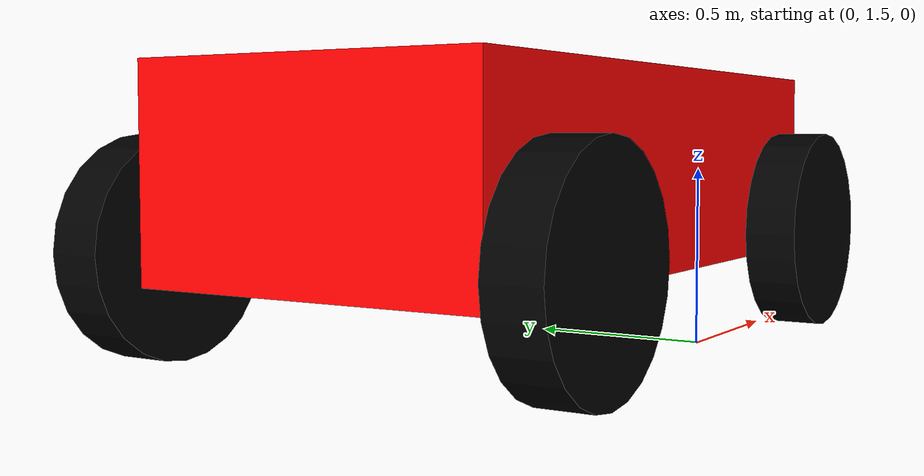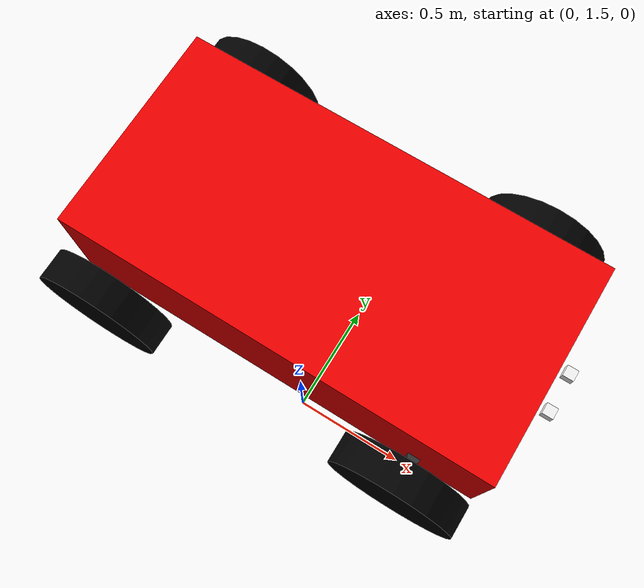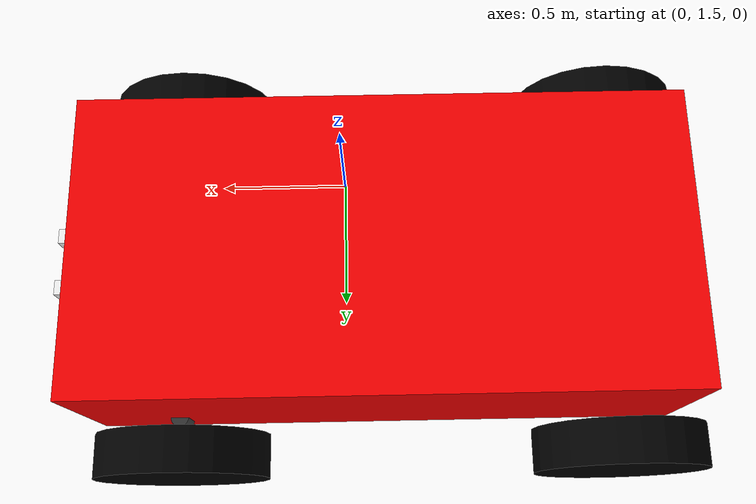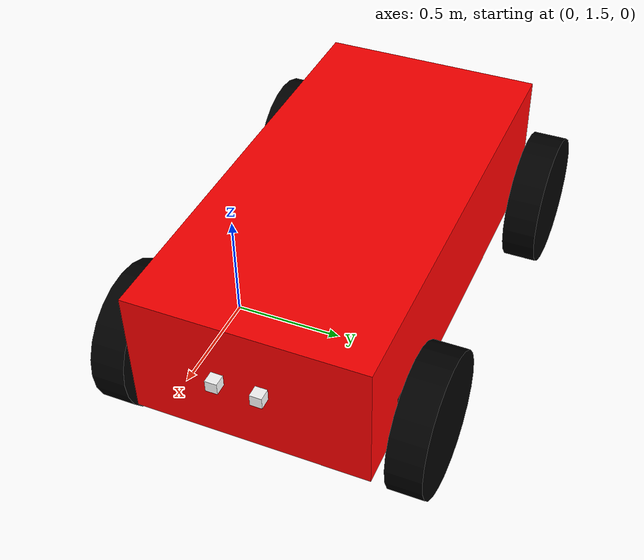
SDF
<?xml version="1.0" ?>
<sdf version="1.9">
	<model name='autonomous_vehicle'>
    <pose>0 2 0.325 0 -0 0</pose>

    <link name='chassis'>
      <pose>-0.151427 -0 0.175 0 -0 0</pose>
      <inertial>
        <mass>1.14395</mass>
        <inertia>
          <ixx>0.126164</ixx>
          <ixy>0</ixy>
          <ixz>0</ixz>
          <iyy>0.416519</iyy>
          <iyz>0</iyz>
          <izz>0.481014</izz>
        </inertia>
      </inertial>
      <visual name='visual'>
        <geometry>
          <box>
            <size>2.01142 1 0.568726</size>
          </box>
        </geometry>
        <material>
          <ambient>1.0 0 0 1</ambient>
          <diffuse>1.0 0 0 1</diffuse>
          <specular>1.0 0 0 1</specular>
        </material>
      </visual>
      <collision name='collision'>
        <geometry>
          <box>
            <size>2.01142 1 0.568726</size>
          </box>
        </geometry>
      </collision>
    </link>

    <link name='front_left_wheel'>
      <pose>0.554283 0.625029 -0.025 -1.5707 0 0</pose>
      <inertial>
        <mass>2</mass>
        <inertia>
          <ixx>0.145833</ixx>
          <ixy>0</ixy>
          <ixz>0</ixz>
          <iyy>0.145833</iyy>
          <iyz>0</iyz>
          <izz>0.125</izz>
        </inertia>
      </inertial>
      <visual name='visual'>
        <geometry>
          <cylinder>
            <length>0.15</length>
            <radius>0.3</radius>
          </cylinder>
        </geometry>
        <material>
          <ambient>0.0 0.0 0.0 1</ambient>
          <diffuse>0.0 0.0 0.0 1</diffuse>
          <specular>0.0 0.0 0.0 1</specular>
        </material>
      </visual>
      <collision name='collision'>
        <geometry>
          <cylinder>
            <length>0.15</length>
            <radius>0.3</radius>
          </cylinder>
        </geometry>
        <surface>
          <friction>
            <ode>
              <mu>0.5</mu>
              <mu2>1.0</mu2>
              <fdir1>0 0 1</fdir1>
            </ode>
          </friction>
        </surface>
      </collision>
    </link>

    <link name='rear_left_wheel'>
      <pose>-0.957138 0.625029 -0.025 -1.5707 0 0</pose>
      <inertial>
        <mass>2</mass>
        <inertia>
          <ixx>0.145833</ixx>
          <ixy>0</ixy>
          <ixz>0</ixz>
          <iyy>0.145833</iyy>
          <iyz>0</iyz>
          <izz>0.125</izz>
        </inertia>
      </inertial>
      <visual name='visual'>
        <geometry>
          <cylinder>
            <length>0.15</length>
            <radius>0.3</radius>
          </cylinder>
        </geometry>
        <material>
          <ambient>0.0 0.0 0.0 1</ambient>
          <diffuse>0.0 0.0 0.0 1</diffuse>
          <specular>0.0 0.0 0.0 1</specular>
        </material>
      </visual>
      <collision name='collision'>
        <geometry>
          <cylinder>
            <length>0.15</length>
            <radius>0.3</radius>
          </cylinder>
        </geometry>
        <surface>
          <friction>
            <ode>
              <mu>0.5</mu>
              <mu2>1.0</mu2>
              <fdir1>0 0 1</fdir1>
            </ode>
          </friction>
        </surface>
      </collision>
    </link>

    <link name='front_right_wheel'>
      <pose>0.554282 -0.625029 -0.025 -1.5707 0 0</pose>
      <inertial>
        <mass>2</mass>
        <inertia>
          <ixx>0.145833</ixx>
          <ixy>0</ixy>
          <ixz>0</ixz>
          <iyy>0.145833</iyy>
          <iyz>0</iyz>
          <izz>0.125</izz>
        </inertia>
      </inertial>
      <visual name='visual'>
        <geometry>
          <cylinder>
            <length>0.15</length>
            <radius>0.3</radius>
          </cylinder>
        </geometry>
        <material>
          <ambient>0.0 0.0 0.0 1</ambient>
          <diffuse>0.0 0.0 0.0 1</diffuse>
          <specular>0.0 0.0 0.0 1</specular>
        </material>
      </visual>
      <collision name='collision'>
        <geometry>
          <cylinder>
            <length>0.15</length>
            <radius>0.3</radius>
          </cylinder>
        </geometry>
        <surface>
          <friction>
            <ode>
              <mu>0.5</mu>
              <mu2>1.0</mu2>
              <fdir1>0 0 1</fdir1>
            </ode>
          </friction>
        </surface>
      </collision>
    </link>

    <link name='rear_right_wheel'>
      <pose>-0.957138 -0.625029 -0.025 -1.5707 0 0</pose>
      <inertial>
        <mass>2</mass>
        <inertia>
          <ixx>0.145833</ixx>
          <ixy>0</ixy>
          <ixz>0</ixz>
          <iyy>0.145833</iyy>
          <iyz>0</iyz>
          <izz>0.125</izz>
        </inertia>
      </inertial>
      <visual name='visual'>
        <geometry>
          <cylinder>
            <length>0.15</length>
            <radius>0.3</radius>
          </cylinder>
        </geometry>
        <material>
          <ambient>0.0 0.0 0.0 1</ambient>
          <diffuse>0.0 0.0 0.0 1</diffuse>
          <specular>0.0 0.0 0.0 1</specular>
        </material>
      </visual>
      <collision name='collision'>
        <geometry>
          <cylinder>
            <length>0.15</length>
            <radius>0.3</radius>
          </cylinder>
        </geometry>
        <surface>
          <friction>
            <ode>
              <mu>0.5</mu>
              <mu2>1.0</mu2>
              <fdir1>0 0 1</fdir1>
            </ode>
          </friction>
        </surface>
      </collision>
    </link>

    <link name="front_left_wheel_steering_link">
      <pose>0.554283 0.5 0.02 0 0 0</pose>
      <inertial>
        <mass>0.5</mass>
        <inertia>
          <ixx>0.0153</ixx>
          <iyy>0.025</iyy>
          <izz>0.0153</izz>
        </inertia>
      </inertial>
      <visual name="steering_link_visual">
        <pose>0 0 0 0 0 0</pose>
        <geometry>
          <cylinder>
            <length>0.1</length>
            <radius>0.03</radius>
          </cylinder>
        </geometry>
        <material>
          <ambient>0.2 0.2 0.2 1</ambient>
          <diffuse>0.2 0.2 0.2 1</diffuse>
          <specular>0.2 0.2 0.2 1</specular>
        </material>
      </visual>
    </link>

    <link name="front_right_wheel_steering_link">
      <pose>0.554283 -0.5 0.02 0 0 0</pose>
      <inertial>
        <mass>0.5</mass>
        <inertia>
          <ixx>0.0153</ixx>
          <iyy>0.025</iyy>
          <izz>0.0153</izz>
        </inertia>
      </inertial>
      <visual name="steering_link_visual">
        <pose>0 0 0 0 0 0</pose>
        <geometry>
          <cylinder>
            <length>0.1</length>
            <radius>0.03</radius>
          </cylinder>
        </geometry>
        <material>
          <ambient>0.2 0.2 0.2 1</ambient>
          <diffuse>0.2 0.2 0.2 1</diffuse>
          <specular>0.2 0.2 0.2 1</specular>
        </material>
      </visual>
    </link>

    <joint name="front_left_wheel_steering_joint" type="revolute">
      <child>front_left_wheel_steering_link</child>
      <parent>chassis</parent>
      <axis>
        <xyz>0 0 1</xyz>
        <limit>
          <lower>-0.6</lower>
          <upper>+0.6</upper>
          <velocity>1.0</velocity>
          <effort>25</effort>
        </limit>
        <use_parent_model_frame>1</use_parent_model_frame>
      </axis>
    </joint>

    <joint name="front_right_wheel_steering_joint" type="revolute">
      <parent>chassis</parent>
      <child>front_right_wheel_steering_link</child>
      <axis>
        <xyz>0 0 1</xyz>
        <limit>
          <lower>-0.6</lower>
          <upper>+0.6</upper>
          <velocity>1.0</velocity>
          <effort>25</effort>
        </limit>
      </axis>
    </joint>

    <joint name='front_left_wheel_joint' type='revolute'>
      <parent>front_left_wheel_steering_link</parent>
      <child>front_left_wheel</child>
      <axis>
        <xyz>0 0 1</xyz>
        <limit>
          <lower>-1.79769e+308</lower>
          <upper>1.79769e+308</upper>
        </limit>
      </axis>
    </joint>

    <joint name='front_right_wheel_joint' type='revolute'>
      <parent>front_right_wheel_steering_link</parent>
      <child>front_right_wheel</child>
      <axis>
        <xyz>0 0 1</xyz>
        <limit>
          <lower>-1.79769e+308</lower>
          <upper>1.79769e+308</upper>
        </limit>
      </axis>
    </joint>

    <joint name='rear_left_wheel_joint' type='revolute'>
      <parent>chassis</parent>
      <child>rear_left_wheel</child>
      <axis>
        <xyz>0 0 1</xyz>
        <limit>
          <lower>-1.79769e+308</lower>
          <upper>1.79769e+308</upper>
        </limit>
      </axis>
    </joint>

    <joint name='rear_right_wheel_joint' type='revolute'>
      <parent>chassis</parent>
      <child>rear_right_wheel</child>
      <axis>
        <xyz>0 0 1</xyz>
        <limit>
          <lower>-1.79769e+308</lower>
          <upper>1.79769e+308</upper>
        </limit>
      </axis>
    </joint>

    <link name="left_camera_link">
      <pose>0.920 0.09 0.25 0 0 0</pose>
      <inertial>
        <mass>0.1</mass>
      </inertial>
      <collision name="collision">
        <geometry>
          <box>
            <size>0.05 0.05 0.05</size>
          </box>
        </geometry>
      </collision>
      <visual name="visual">
        <geometry>
          <box>
            <size>0.05 0.05 0.05</size>
          </box>
        </geometry>
        <material>
          <ambient>1.0 1.0 1.0 1.0</ambient>
          <diffuse>1.0 1.0 1.0 1.0</diffuse>
          <specular>1.0 1.0 1.0 1.0</specular>
        </material>
      </visual>
      <sensor name="left_camera" type="camera">
        <camera>
          <horizontal_fov>1.1519</horizontal_fov>
          <image>
            <width>768</width>
            <height>432</height>
          </image>
          <clip>
            <near>0.1</near>
            <far>100</far>
          </clip>
        </camera>
        <always_on>1</always_on>
        <update_rate>30</update_rate>
        <visualize>false</visualize>
      </sensor>
    </link>

    <link name="right_camera_link">
      <pose>0.920 -0.09 0.25 0 0 0</pose>
      <inertial>
        <mass>0.1</mass>
      </inertial>
      <collision name="collision">
        <geometry>
          <box>
            <size>0.05 0.05 0.05</size>
          </box>
        </geometry>
      </collision>
      <visual name="visual">
        <geometry>
          <box>
            <size>0.05 0.05 0.05</size>
          </box>
        </geometry>
        <material>
          <ambient>1.0 1.0 1.0 1.0</ambient>
          <diffuse>1.0 1.0 1.0 1.0</diffuse>
          <specular>1.0 1.0 1.0 1.0</specular>
        </material>
      </visual>
      <sensor name="right_camera" type="camera">
        <camera>
          <horizontal_fov>1.1519</horizontal_fov>
          <image>
            <width>768</width>
            <height>432</height>
          </image>
          <clip>
            <near>0.1</near>
            <far>100</far>
          </clip>
        </camera>
        <always_on>1</always_on>
        <update_rate>30</update_rate>
        <visualize>false</visualize>
      </sensor>
    </link>

    <joint name='left_camera_joint' type='fixed'>
      <parent>chassis</parent>
      <child>left_camera_link</child>
    </joint>

    <joint name='rigt_camera_joint' type='fixed'>
      <parent>chassis</parent>
      <child>right_camera_link</child>
    </joint>

    <plugin
      filename="ignition-gazebo-ackermann-steering-system"
      name="gz::sim::systems::AckermannSteering">
      <left_joint>front_left_wheel_joint</left_joint>
      <left_joint>rear_left_wheel_joint</left_joint>
      <right_joint>front_right_wheel_joint</right_joint>
      <right_joint>rear_right_wheel_joint</right_joint>
      <left_steering_joint>front_left_wheel_steering_joint</left_steering_joint>
      <right_steering_joint>front_right_wheel_steering_joint</right_steering_joint>
      <kingpin_width>1.0</kingpin_width>
      <steering_limit>0.5</steering_limit>
      <wheel_base>1.0</wheel_base>
      <wheel_separation>1.25</wheel_separation>
      <wheel_radius>0.3</wheel_radius>
      <min_velocity>-1</min_velocity>
      <max_velocity>1</max_velocity>
      <min_acceleration>-3</min_acceleration>
      <max_acceleration>3</max_acceleration>
      <odom_topic>/model/autonomous_vehicle/odometry/ackermann</odom_topic>
      <frame_id>odom</frame_id>
    </plugin>

    <plugin
      filename="libignition-gazebo-odometry-publisher-system.so"
      name="ignition::gazebo::systems::OdometryPublisher">
      <xyz_offset>-0.957138 0 -0.025 0 0 0</xyz_offset>
      <odom_publish_frequency>15</odom_publish_frequency>
      <odom_frame>odom</odom_frame>
    </plugin>

  </model>
</sdf>
